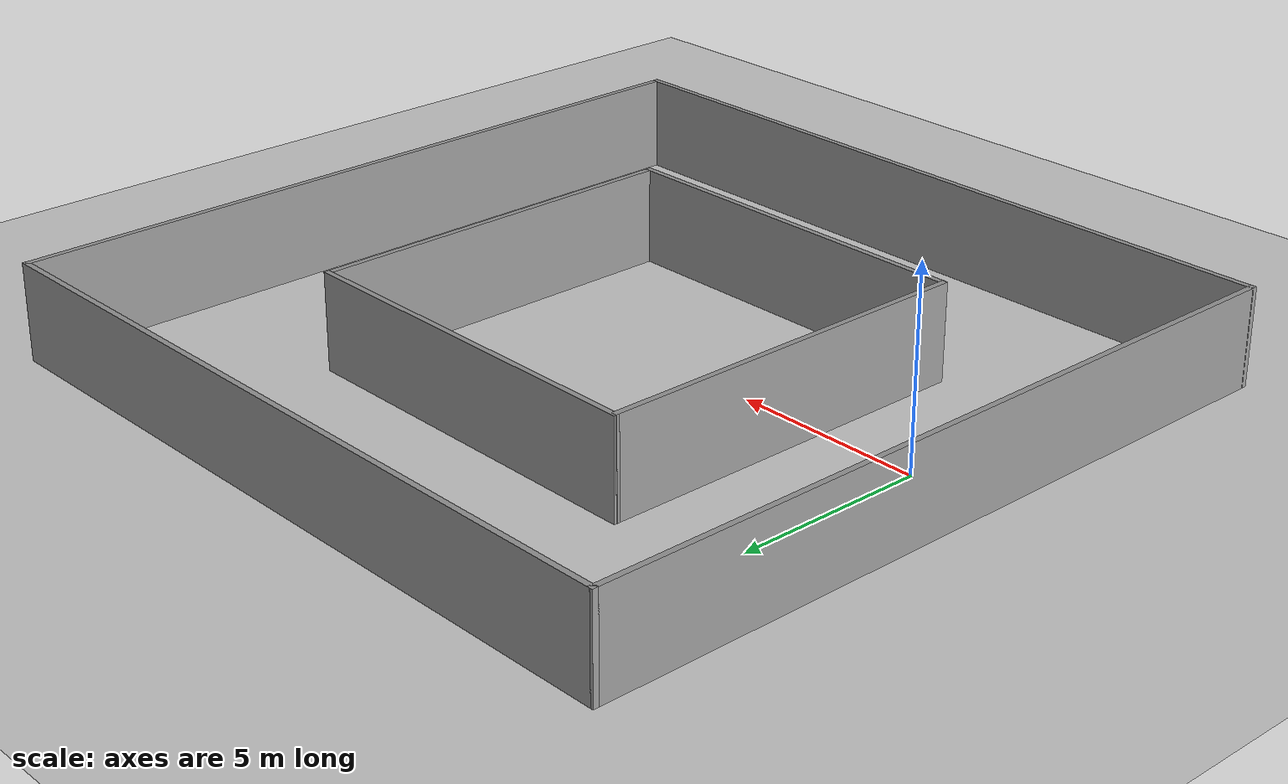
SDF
<sdf version="1.6">
 <world name="default">
  <light name="sun" type="directional">
   <pose>0 0 10 0 -0 0</pose>
   <diffuse>0.8 0.8 0.8 1</diffuse>
   <specular>0.2 0.2 0.2 1</specular>
   <attenuation>
    <range>1000</range>
    <constant>0.9</constant>
    <linear>0.01</linear>
    <quadratic>0.001</quadratic>
   </attenuation>
   <direction>-0.5 0.1 -0.9</direction>
  </light>
  <model name="ground_plane">
   <static>1</static>
   <link name="link">
    <collision name="collision">
     <geometry><plane><normal>0 0 1</normal><size>100 100</size></plane></geometry>
     <surface>
      <contact><collide_bitmask>65535</collide_bitmask></contact>
      <friction><ode><mu>100</mu><mu2>50</mu2></ode></friction>
     </surface>
    </collision>
    <visual name="visual">
     <cast_shadows>0</cast_shadows>
     <geometry><plane><normal>0 0 1</normal><size>100 100</size></plane></geometry>
     <material>
      <script><uri>file://media/materials/scripts/gazebo.material</uri><name>Gazebo/Grey</name></script>
     </material>
    </visual>
   </link>
  </model>
  <gravity>0 0 -9.8</gravity>
  <magnetic_field>6e-06 2.3e-05 -4.2e-05</magnetic_field>
  <atmosphere type="adiabatic"/>
  <physics name="default_physics" default="0" type="ode">
   <max_step_size>0.001</max_step_size>
   <real_time_factor>1</real_time_factor>
   <real_time_update_rate>1000</real_time_update_rate>
  </physics>
  <scene><ambient>0.4 0.4 0.4 1</ambient><background>0.7 0.7 0.7 1</background><shadows>1</shadows></scene>
  <audio><device>default</device></audio>
  <spherical_coordinates>
   <surface_model>EARTH_WGS84</surface_model>
   <latitude_deg>0</latitude_deg>
   <longitude_deg>0</longitude_deg>
   <elevation>0</elevation>
   <heading_deg>0</heading_deg>
  </spherical_coordinates>
  <model name="square">
   <pose>7.79554 0.980606 0 0 -0 0</pose>
   <link name="Wall_14">
    <collision name="Wall_14_Collision">
     <geometry><box><size>20 0.15 2.5</size></box></geometry>
     <pose>0 0 1.25 0 -0 0</pose>
    </collision>
    <visual name="Wall_14_Visual">
     <pose>0 0 1.25 0 -0 0</pose>
     <geometry><box><size>20 0.15 2.5</size></box></geometry>
     <material>
      <script><uri>file://media/materials/scripts/gazebo.material</uri><name>Gazebo/Grey</name></script>
      <ambient>1 1 1 1</ambient>
     </material>
     <meta><layer>0</layer></meta>
    </visual>
    <pose>-0.002225 -9.925 0 0 -0 0</pose>
   </link>
   <link name="Wall_17">
    <collision name="Wall_17_Collision">
     <geometry><box><size>20 0.15 2.5</size></box></geometry>
     <pose>0 0 1.25 0 -0 0</pose>
    </collision>
    <visual name="Wall_17_Visual">
     <pose>0 0 1.25 0 -0 0</pose>
     <geometry><box><size>20 0.15 2.5</size></box></geometry>
     <material>
      <script><uri>file://media/materials/scripts/gazebo.material</uri><name>Gazebo/Grey</name></script>
      <ambient>1 1 1 1</ambient>
     </material>
     <meta><layer>0</layer></meta>
    </visual>
    <pose>0.00224 9.925 0 0 -0 0</pose>
   </link>
   <link name="Wall_19">
    <collision name="Wall_19_Collision">
     <geometry><box><size>20 0.15 2.5</size></box></geometry>
     <pose>0 0 1.25 0 -0 0</pose>
    </collision>
    <visual name="Wall_19_Visual">
     <pose>0 0 1.25 0 -0 0</pose>
     <geometry><box><size>20 0.15 2.5</size></box></geometry>
     <material>
      <script><uri>file://media/materials/scripts/gazebo.material</uri><name>Gazebo/Grey</name></script>
      <ambient>1 1 1 1</ambient>
     </material>
     <meta><layer>0</layer></meta>
    </visual>
    <pose>9.92277 -0 0 0 -0 1.5708</pose>
   </link>
   <link name="Wall_2">
    <collision name="Wall_2_Collision">
     <geometry><box><size>20 0.15 2.5</size></box></geometry>
     <pose>0 0 1.25 0 -0 0</pose>
    </collision>
    <visual name="Wall_2_Visual">
     <pose>0 0 1.25 0 -0 0</pose>
     <geometry><box><size>20 0.15 2.5</size></box></geometry>
     <material>
      <script><uri>file://media/materials/scripts/gazebo.material</uri><name>Gazebo/Grey</name></script>
      <ambient>1 1 1 1</ambient>
     </material>
     <meta><layer>0</layer></meta>
    </visual>
    <pose>-9.92499 -0 0 0 -0 1.57057</pose>
   </link>
   <link name="Wall_24">
    <collision name="Wall_24_Collision">
     <geometry><box><size>10.1142 0.15 2.5</size></box></geometry>
     <pose>0 0 1.25 0 -0 0</pose>
    </collision>
    <visual name="Wall_24_Visual">
     <pose>0 0 1.25 0 -0 0</pose>
     <geometry><box><size>10.1142 0.15 2.5</size></box></geometry>
     <material>
      <script><uri>file://media/materials/scripts/gazebo.material</uri><name>Gazebo/Grey</name></script>
      <ambient>1 1 1 1</ambient>
     </material>
     <meta><layer>0</layer></meta>
    </visual>
    <pose>-5.06529 0.042181 0 0 -0 1.57147</pose>
   </link>
   <link name="Wall_26">
    <collision name="Wall_26_Collision">
     <geometry><box><size>10 0.15 2.5</size></box></geometry>
     <pose>0 0 1.25 0 -0 0</pose>
    </collision>
    <visual name="Wall_26_Visual">
     <pose>0 0 1.25 0 -0 0</pose>
     <geometry><box><size>10 0.15 2.5</size></box></geometry>
     <material>
      <script><uri>file://media/materials/scripts/gazebo.material</uri><name>Gazebo/Grey</name></script>
      <ambient>1 1 1 1</ambient>
     </material>
     <meta><layer>0</layer></meta>
    </visual>
    <pose>-0.123744 -4.95655 0 0 -0 0</pose>
   </link>
   <link name="Wall_30">
    <collision name="Wall_30_Collision">
     <geometry><box><size>10.1142 0.15 2.5</size></box></geometry>
     <pose>0 0 1.25 0 -0 0</pose>
    </collision>
    <visual name="Wall_30_Visual">
     <pose>0 0 1.25 0 -0 0</pose>
     <geometry><box><size>10.1142 0.15 2.5</size></box></geometry>
     <material>
      <script><uri>file://media/materials/scripts/gazebo.material</uri><name>Gazebo/Grey</name></script>
      <ambient>1 1 1 1</ambient>
     </material>
     <meta><layer>0</layer></meta>
    </visual>
    <pose>4.79788 0.025523 0 0 -0 1.57147</pose>
   </link>
   <link name="Wall_32">
    <collision name="Wall_32_Collision">
     <geometry><box><size>10.0132 0.15 2.5</size></box></geometry>
     <pose>0 0 1.25 0 -0 0</pose>
    </collision>
    <visual name="Wall_32_Visual">
     <pose>0 0 1.25 0 -0 0</pose>
     <geometry><box><size>10.0132 0.15 2.5</size></box></geometry>
     <material>
      <script><uri>file://media/materials/scripts/gazebo.material</uri><name>Gazebo/Grey</name></script>
      <ambient>1 1 1 1</ambient>
     </material>
     <meta><layer>0</layer></meta>
    </visual>
    <pose>-0.137081 5.06973 0 0 -0 -0.001689</pose>
   </link>
   <static>1</static>
  </model>
 </world>
</sdf>
